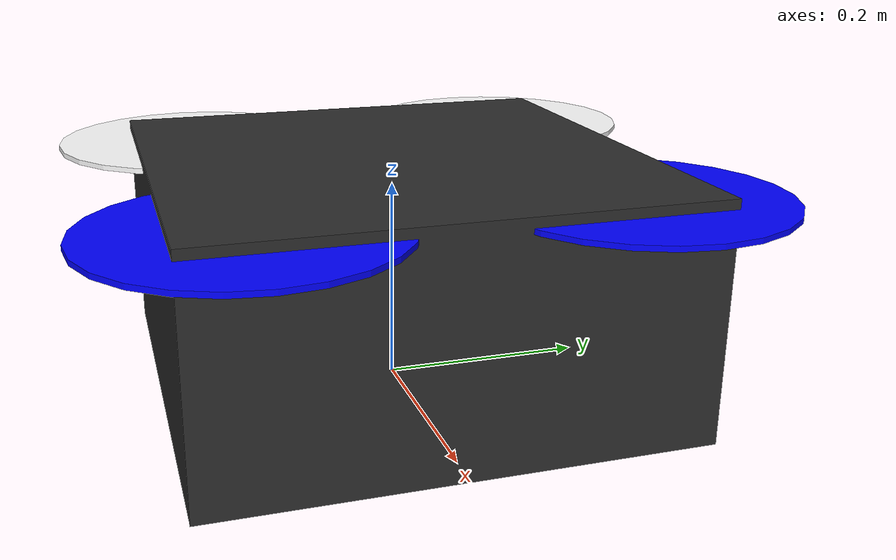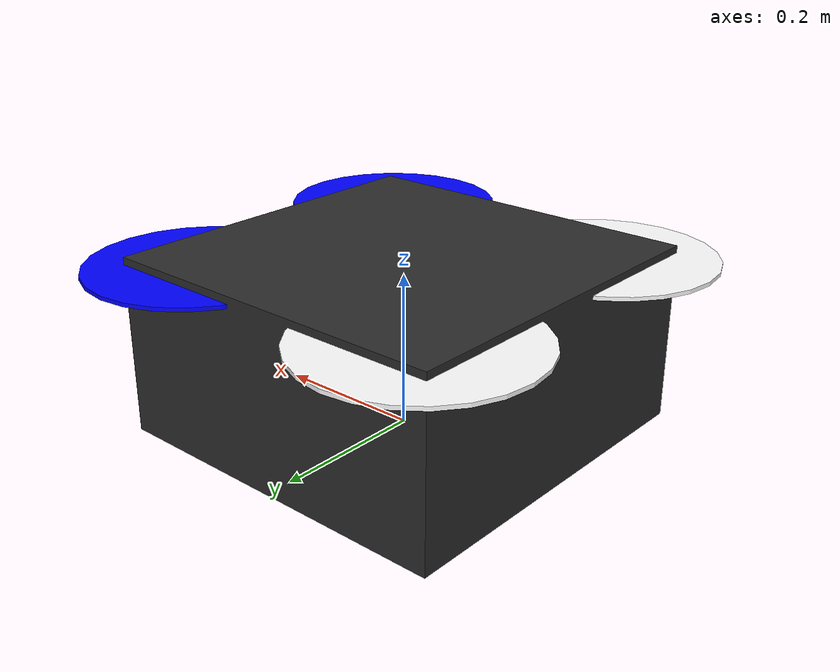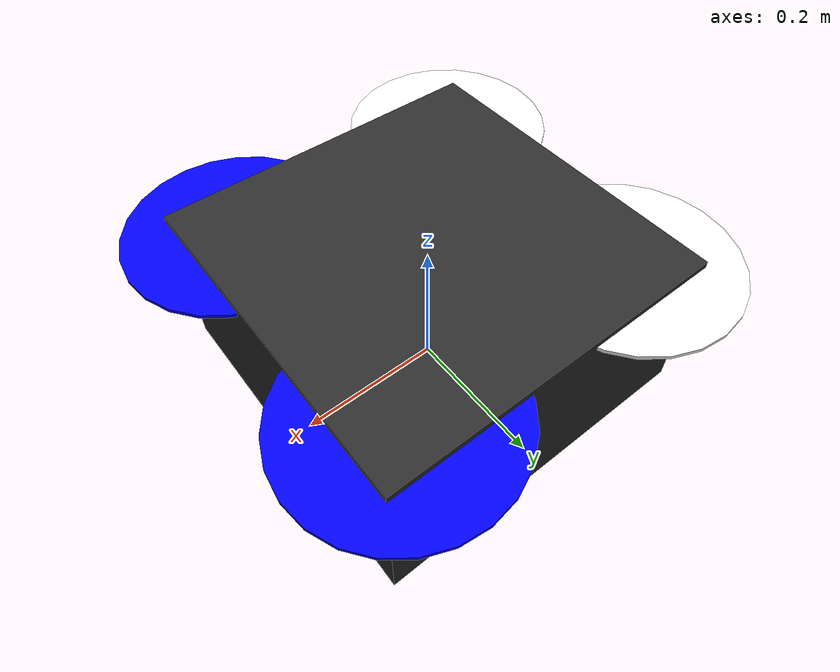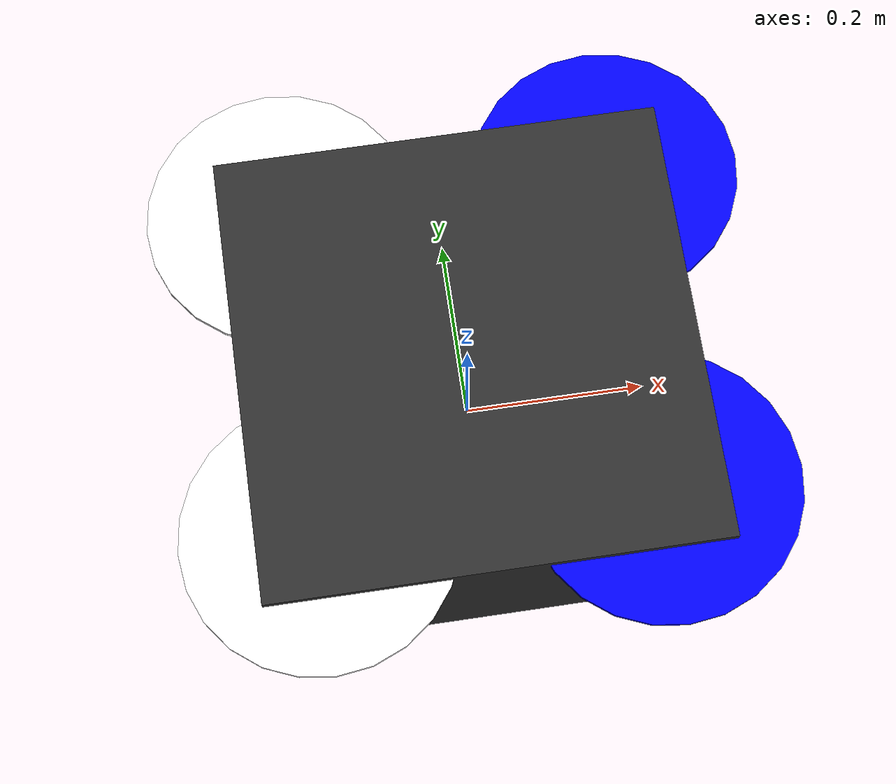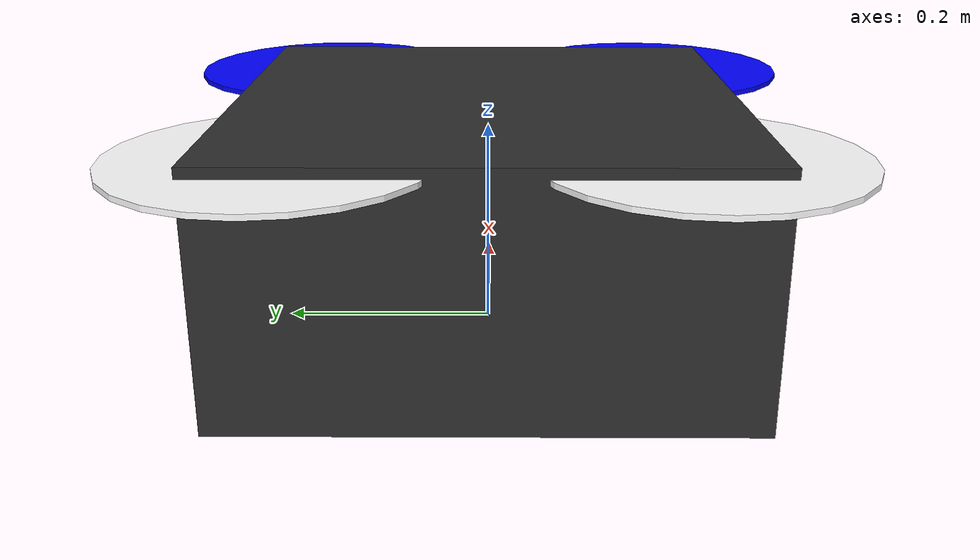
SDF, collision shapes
<?xml version='1.0' encoding='utf-8'?>
<sdf version="1.5">
  <model name="s500_custom_with_ardupilot">
    <pose>0 0 0.217923 0 0 0</pose>
    <link name="base_link">
      <pose>0 0 -0.023 0 0 0</pose>
      <velocity_decay>
        <linear>0.0</linear>
        <angular>0.0</angular>
      </velocity_decay>
      <inertial>
        <pose>-0.0039262 -0.0100078 -0.1004777 0 0 0</pose>
        <mass>2.18875</mass>
        <inertia>
          <ixx>0.01135409887</ixx>
          <ixy>-5.566618125e-05</ixy>
          <ixz>9.88726375e-05</ixz>
          <iyy>0.005295652256</iyy>
          <iyz>-0.000675407025</iyz>
          <izz>0.009625020263</izz>
        </inertia>
      </inertial>
      <collision name="base_link_collision">
        <pose>0 0 -0.08 0 0 0</pose>
        <geometry>
          <box>
            <size>0.47 0.47 0.23</size>
          </box>
        </geometry>
        <surface>
          <contact>
            <ode>
              <max_vel>100.0</max_vel>
              <min_depth>0.001</min_depth>
            </ode>
          </contact>
          <friction>
            <ode>
              <mu>100000.0</mu>
              <mu2>100000.0</mu2>
            </ode>
          </friction>
        </surface>
      </collision>
      <visual name="base_link_visual">
        <geometry>
          <mesh>
            <uri>model://iris_with_standoffs/meshes/iris.dae</uri>
          </mesh>
        </geometry>
        <material>

          <ambient>.175 .175 .175  1.0</ambient>
          <diffuse>.175 .175 .175  1.0</diffuse>
          <specular>.175 .175 .175 1.000000</specular>
        </material>
      </visual>

      <visual name="front_left_leg_visual">
        <pose>0.123 0.22 -0.11 0 0 0</pose>
        <geometry>
          <cylinder>
            <radius>0.005</radius>
            <length>0.17</length>
          </cylinder>
        </geometry>
        <material>

          <ambient>0.1 0.1 0.1</ambient>
          <diffuse>0.1 0.1 0.1</diffuse>
          <specular>0.01 0.01 0.01 1.0</specular>
        </material>
      </visual>
      <visual name="front_right_leg_visual">
        <pose>0.123 -0.22 -0.11 0 0 0</pose>
        <geometry>
          <cylinder>
            <radius>0.005</radius>
            <length>0.17</length>
          </cylinder>
        </geometry>
        <material>

          <ambient>0.1 0.1 0.1</ambient>
          <diffuse>0.1 0.1 0.1</diffuse>
          <specular>0.01 0.01 0.01 1.0</specular>
        </material>
      </visual>
      <visual name="rear_left_leg_visual">
        <pose>-0.140 0.21 -0.11 0 0 0</pose>
        <geometry>
          <cylinder>
            <radius>0.005</radius>
            <length>0.17</length>
          </cylinder>
        </geometry>
        <material>

          <ambient>0.1 0.1 0.1</ambient>
          <diffuse>0.1 0.1 0.1</diffuse>
          <specular>0.01 0.01 0.01 1.0</specular>
        </material>
      </visual>
      <visual name="rear_right_leg_visual">
        <pose>-0.140 -0.21 -0.11 0 0 0</pose>
        <geometry>
          <cylinder>
            <radius>0.005</radius>
            <length>0.17</length>
          </cylinder>
        </geometry>
        <material>

          <ambient>0.1 0.1 0.1</ambient>
          <diffuse>0.1 0.1 0.1</diffuse>
          <specular>0.01 0.01 0.01 1.0</specular>
        </material>
      </visual>
    </link>
    <link name="iris/ground_truth/odometry_sensorgt_link">
      <pose>0 0 -0.023 0 -0 0</pose>
      <inertial>
        <pose>0 0 0 0 -0 0</pose>
        <mass>0.159375</mass>
        <inertia>
          <ixx>0.00010625</ixx>
          <ixy>0</ixy>
          <ixz>0</ixz>
          <iyy>0.0002125</iyy>
          <iyz>0</iyz>
          <izz>0.0002125</izz>
        </inertia>
      </inertial>
    </link>
    <joint name="iris/ground_truth/odometry_sensorgt_joint" type="fixed">
      <child>iris/ground_truth/odometry_sensorgt_link</child>
      <parent>base_link</parent>
      <axis>
        <xyz>0 0 1</xyz>
        <limit>
          <lower>0</lower>
          <upper>0</upper>
          <effort>0</effort>
          <velocity>0</velocity>
        </limit>
        <dynamics>
          <damping>1.0</damping>
        </dynamics>
        <use_parent_model_frame>1</use_parent_model_frame>
      </axis>
      <physics>
        <ode>
          <implicit_spring_damper>1</implicit_spring_damper>
        </ode>
      </physics>
    </joint>
    <link name="imu_link">
      <pose>0 0 -0.023 0 0 0</pose>
      <inertial>
        <pose>0 0 0 0 0 0</pose>
        <mass>0.159375</mass>
        <inertia>
          <ixx>1.0625e-05</ixx>
          <ixy>0</ixy>
          <ixz>0</ixz>
          <iyy>2.125e-05</iyy>
          <iyz>0</iyz>
          <izz>2.125e-05</izz>
        </inertia>
      </inertial>
      <sensor name="imu_sensor" type="imu">
        <pose>0 0 0 3.141593 0 0</pose>
        <always_on>1</always_on>
        <update_rate>1000.0</update_rate>
      </sensor>
    </link>
    <joint name="iris/imu_joint" type="fixed">
      <child>imu_link</child>
      <parent>base_link</parent>
      <axis>
        <xyz>0 0 1</xyz>
        <limit>
          <lower>0</lower>
          <upper>0</upper>
          <effort>0</effort>
          <velocity>0</velocity>
        </limit>
        <dynamics>
          <damping>1.0</damping>
        </dynamics>
        <use_parent_model_frame>1</use_parent_model_frame>
      </axis>
      <physics>
        <ode>
          <implicit_spring_damper>1</implicit_spring_damper>
        </ode>
      </physics>
    </joint>

    <link name="rotor_0">
      <pose>0.1718022 -0.1718022 0 0 -0 0</pose>
      <inertial>
        <pose>0 0 0 0 -0 0</pose>
        <mass>0.010625</mass>
        <inertia>
          <ixx>4.14375e-06</ixx>
          <ixy>0</ixy>
          <ixz>0</ixz>
          <iyy>7.08492e-05</iyy>
          <iyz>0</iyz>
          <izz>7.12317e-05</izz>
        </inertia>
      </inertial>
      <collision name="rotor_0_collision">
        <pose>0 0 0 0 -0 0</pose>
        <geometry>
          <cylinder>
            <length>0.005</length>
            <radius>0.1397</radius>
          </cylinder>
        </geometry>
        <surface>
          <contact>
            <ode />
          </contact>
          <friction>
            <ode />
          </friction>
        </surface>
      </collision>
      <visual name="rotor_0_visual">
        <pose>0 0 0 0 -0 0</pose>
        <geometry>
          <mesh>
            <scale>1.078 1.078 1.078</scale>
            <uri>model://iris_with_standoffs/meshes/iris_prop_ccw.dae</uri>
          </mesh>
        </geometry>
        <material>

          <ambient>0 0 1</ambient>
          <diffuse>0 0 1</diffuse>
          <specular>0.1 0.1 0.1 1</specular>
        </material>
      </visual>
      <gravity>1</gravity>
      <velocity_decay />
      <self_collide>0</self_collide>
    </link>
    <joint name="rotor_0_joint" type="revolute">
      <child>rotor_0</child>
      <parent>base_link</parent>
      <axis>
        <xyz>0 0 1</xyz>
        <limit>
          <lower>-1e+16</lower>
          <upper>1e+16</upper>
        </limit>
        <dynamics>
          <damping>0.004</damping>
        </dynamics>
        <use_parent_model_frame>1</use_parent_model_frame>
      </axis>
      <physics>
        <ode>
          <implicit_spring_damper>1</implicit_spring_damper>
        </ode>
      </physics>
    </joint>
    <link name="rotor_1">
      <pose>-0.1718022 0.1718022 0 0 -0 0</pose>
      <inertial>
        <pose>0 0 0 0 -0 0</pose>
        <mass>0.010625</mass>
        <inertia>
          <ixx>4.14375e-06</ixx>
          <ixy>0</ixy>
          <ixz>0</ixz>
          <iyy>7.08492e-05</iyy>
          <iyz>0</iyz>
          <izz>7.12317e-05</izz>
        </inertia>
      </inertial>
      <collision name="rotor_1_collision">
        <pose>0 0 0 0 -0 0</pose>
        <geometry>
          <cylinder>
            <length>0.005</length>
            <radius>0.1397</radius>
          </cylinder>
        </geometry>
        <surface>
          <contact>
            <ode />
          </contact>
          <friction>
            <ode />
          </friction>
        </surface>
      </collision>
      <visual name="rotor_1_visual">
        <pose>0 0 0 0 -0 0</pose>
        <geometry>
          <mesh>
            <scale>1.078 1.078 1.078</scale>
            <uri>model://iris_with_standoffs/meshes/iris_prop_ccw.dae</uri>
          </mesh>
        </geometry>
        <material>

          <ambient>1 1 1 1</ambient>
          <diffuse>1 1 1 1</diffuse>
          <specular>.1 .1 .1 1</specular>
        </material>
      </visual>
      <gravity>1</gravity>
      <velocity_decay />
      <self_collide>0</self_collide>
    </link>
    <joint name="rotor_1_joint" type="revolute">
      <child>rotor_1</child>
      <parent>base_link</parent>
      <axis>
        <xyz>0 0 1</xyz>
        <limit>
          <lower>-1e+16</lower>
          <upper>1e+16</upper>
        </limit>
        <dynamics>
          <damping>0.004</damping>
        </dynamics>
        <use_parent_model_frame>1</use_parent_model_frame>
      </axis>
      <physics>
        <ode>
          <implicit_spring_damper>1</implicit_spring_damper>
        </ode>
      </physics>
    </joint>
    <link name="rotor_2">
      <pose>0.1718022 0.1718022 0 0 -0 0</pose>
      <inertial>
        <pose>0 0 0 0 -0 0</pose>
        <mass>0.010625</mass>
        <inertia>
          <ixx>4.14375e-06</ixx>
          <ixy>0</ixy>
          <ixz>0</ixz>
          <iyy>7.08492e-05</iyy>
          <iyz>0</iyz>
          <izz>7.12317e-05</izz>
        </inertia>
      </inertial>
      <collision name="rotor_2_collision">
        <pose>0 0 0 0 -0 0</pose>
        <geometry>
          <cylinder>
            <length>0.005</length>
            <radius>0.1397</radius>
          </cylinder>
        </geometry>
        <surface>
          <contact>
            <ode />
          </contact>
          <friction>
            <ode />
          </friction>
        </surface>
      </collision>
      <visual name="rotor_2_visual">
        <pose>0 0 0 0 -0 0</pose>
        <geometry>
          <mesh>
            <scale>1.078 1.078 1.078</scale>
            <uri>model://iris_with_standoffs/meshes/iris_prop_cw.dae</uri>
          </mesh>
        </geometry>
        <material>

          <ambient>0 0 1</ambient>
          <diffuse>0 0 1</diffuse>
          <specular>0.1 0.1 0.1 1</specular>
        </material>
      </visual>
      <gravity>1</gravity>
      <velocity_decay />
      <self_collide>0</self_collide>
    </link>
    <joint name="rotor_2_joint" type="revolute">
      <child>rotor_2</child>
      <parent>base_link</parent>
      <axis>
        <xyz>0 0 1</xyz>
        <limit>
          <lower>-1e+16</lower>
          <upper>1e+16</upper>
        </limit>
        <dynamics>
          <damping>0.004</damping>
        </dynamics>
        <use_parent_model_frame>1</use_parent_model_frame>
      </axis>
      <physics>
        <ode>
          <implicit_spring_damper>1</implicit_spring_damper>
        </ode>
      </physics>
    </joint>
    <link name="rotor_3">
      <pose>-0.1718022 -0.1718022 0 0 -0 0</pose>
      <inertial>
        <pose>0 0 0 0 -0 0</pose>
        <mass>0.010625</mass>
        <inertia>
          <ixx>4.14375e-06</ixx>
          <ixy>0</ixy>
          <ixz>0</ixz>
          <iyy>7.08492e-05</iyy>
          <iyz>0</iyz>
          <izz>7.12317e-05</izz>
        </inertia>
      </inertial>
      <collision name="rotor_3_collision">
        <pose>0 0 0 0 -0 0</pose>
        <geometry>
          <cylinder>
            <length>0.005</length>
            <radius>0.1397</radius>
          </cylinder>
        </geometry>
        <surface>
          <contact>
            <ode />
          </contact>
          <friction>
            <ode />
          </friction>
        </surface>
      </collision>
      <visual name="rotor_3_visual">
        <pose>0 0 0 0 -0 0</pose>
        <geometry>
          <mesh>
            <scale>1.078 1.078 1.078</scale>
            <uri>model://iris_with_standoffs/meshes/iris_prop_cw.dae</uri>
          </mesh>
        </geometry>
        <material>

          <ambient>1 1 1 1</ambient>
          <diffuse>1 1 1 1</diffuse>
          <specular>.1 .1 .1 1</specular>
        </material>
      </visual>
      <gravity>1</gravity>
      <velocity_decay />
      <self_collide>0</self_collide>
    </link>
    <joint name="rotor_3_joint" type="revolute">
      <child>rotor_3</child>
      <parent>base_link</parent>
      <axis>
        <xyz>0 0 1</xyz>
        <limit>
          <lower>-1e+16</lower>
          <upper>1e+16</upper>
        </limit>
        <dynamics>
          <damping>0.004</damping>
        </dynamics>
        <use_parent_model_frame>1</use_parent_model_frame>
      </axis>
      <physics>
        <ode>
          <implicit_spring_damper>1</implicit_spring_damper>
        </ode>
      </physics>
    </joint>
    <static>0</static>

    <plugin filename="libignition-gazebo-joint-state-publisher-system.so" name="ignition::gazebo::systems::JointStatePublisher">
    </plugin>
    <plugin filename="libignition-gazebo-lift-drag-system.so" name="ignition::gazebo::systems::LiftDrag">
      <a0>0.3</a0>
      <alpha_stall>1.4</alpha_stall>
      <cla>5.153257</cla>
      <cda>0.10</cda>
      <cma>0.00</cma>
      <cla_stall>-0.025</cla_stall>
      <cda_stall>0.0</cda_stall>
      <cma_stall>0.0</cma_stall>
      <area>0.002</area>
      <air_density>1.2041</air_density>
      <cp>0.084 0 0</cp>
      <forward>0 1 0</forward>
      <upward>0 0 1</upward>
      <link_name>rotor_0</link_name>
    </plugin>
    <plugin filename="libignition-gazebo-lift-drag-system.so" name="ignition::gazebo::systems::LiftDrag">
      <a0>0.3</a0>
      <alpha_stall>1.4</alpha_stall>
      <cla>5.153257</cla>
      <cda>0.10</cda>
      <cma>0.00</cma>
      <cla_stall>-0.025</cla_stall>
      <cda_stall>0.0</cda_stall>
      <cma_stall>0.0</cma_stall>
      <area>0.002</area>
      <air_density>1.2041</air_density>
      <cp>-0.084 0 0</cp>
      <forward>0 -1 0</forward>
      <upward>0 0 1</upward>
      <link_name>rotor_0</link_name>
    </plugin>

    <plugin filename="libignition-gazebo-lift-drag-system.so" name="ignition::gazebo::systems::LiftDrag">
      <a0>0.3</a0>
      <alpha_stall>1.4</alpha_stall>
      <cla>5.153257</cla>
      <cda>0.10</cda>
      <cma>0.00</cma>
      <cla_stall>-0.025</cla_stall>
      <cda_stall>0.0</cda_stall>
      <cma_stall>0.0</cma_stall>
      <area>0.002</area>
      <air_density>1.2041</air_density>
      <cp>0.084 0 0</cp>
      <forward>0 1 0</forward>
      <upward>0 0 1</upward>
      <link_name>rotor_1</link_name>
    </plugin>
    <plugin filename="libignition-gazebo-lift-drag-system.so" name="ignition::gazebo::systems::LiftDrag">
      <a0>0.3</a0>
      <alpha_stall>1.4</alpha_stall>
      <cla>5.153257</cla>
      <cda>0.10</cda>
      <cma>0.00</cma>
      <cla_stall>-0.025</cla_stall>
      <cda_stall>0.0</cda_stall>
      <cma_stall>0.0</cma_stall>
      <area>0.002</area>
      <air_density>1.2041</air_density>
      <cp>-0.084 0 0</cp>
      <forward>0 -1 0</forward>
      <upward>0 0 1</upward>
      <link_name>rotor_1</link_name>
    </plugin>

    <plugin filename="libignition-gazebo-lift-drag-system.so" name="ignition::gazebo::systems::LiftDrag">
      <a0>0.3</a0>
      <alpha_stall>1.4</alpha_stall>
      <cla>5.153257</cla>
      <cda>0.10</cda>
      <cma>0.00</cma>
      <cla_stall>-0.025</cla_stall>
      <cda_stall>0.0</cda_stall>
      <cma_stall>0.0</cma_stall>
      <area>0.002</area>
      <air_density>1.2041</air_density>
      <cp>0.084 0 0</cp>
      <forward>0 -1 0</forward>
      <upward>0 0 1</upward>
      <link_name>rotor_2</link_name>
    </plugin>
    <plugin filename="libignition-gazebo-lift-drag-system.so" name="ignition::gazebo::systems::LiftDrag">
      <a0>0.3</a0>
      <alpha_stall>1.4</alpha_stall>
      <cla>5.153257</cla>
      <cda>0.10</cda>
      <cma>0.00</cma>
      <cla_stall>-0.025</cla_stall>
      <cda_stall>0.0</cda_stall>
      <cma_stall>0.0</cma_stall>
      <area>0.002</area>
      <air_density>1.2041</air_density>
      <cp>-0.084 0 0</cp>
      <forward>0 1 0</forward>
      <upward>0 0 1</upward>
      <link_name>rotor_2</link_name>
    </plugin>

    <plugin filename="libignition-gazebo-lift-drag-system.so" name="ignition::gazebo::systems::LiftDrag">
      <a0>0.3</a0>
      <alpha_stall>1.4</alpha_stall>
      <cla>5.153257</cla>
      <cda>0.10</cda>
      <cma>0.00</cma>
      <cla_stall>-0.025</cla_stall>
      <cda_stall>0.0</cda_stall>
      <cma_stall>0.0</cma_stall>
      <area>0.002</area>
      <air_density>1.2041</air_density>
      <cp>0.084 0 0</cp>
      <forward>0 -1 0</forward>
      <upward>0 0 1</upward>
      <link_name>rotor_3</link_name>
    </plugin>
    <plugin filename="libignition-gazebo-lift-drag-system.so" name="ignition::gazebo::systems::LiftDrag">
      <a0>0.3</a0>
      <alpha_stall>1.4</alpha_stall>
      <cla>5.153257</cla>
      <cda>0.10</cda>
      <cma>0.00</cma>
      <cla_stall>-0.025</cla_stall>
      <cda_stall>0.0</cda_stall>
      <cma_stall>0.0</cma_stall>
      <area>0.002</area>
      <air_density>1.2041</air_density>
      <cp>-0.084 0 0</cp>
      <forward>0 1 0</forward>
      <upward>0 0 1</upward>
      <link_name>rotor_3</link_name>
    </plugin>

    <plugin filename="libignition-gazebo-apply-joint-force-system.so" name="ignition::gazebo::systems::ApplyJointForce">
      <joint_name>rotor_0_joint</joint_name>
    </plugin>
    <plugin filename="libignition-gazebo-apply-joint-force-system.so" name="ignition::gazebo::systems::ApplyJointForce">
      <joint_name>rotor_1_joint</joint_name>
    </plugin>
    <plugin filename="libignition-gazebo-apply-joint-force-system.so" name="ignition::gazebo::systems::ApplyJointForce">
      <joint_name>rotor_2_joint</joint_name>
    </plugin>
    <plugin filename="libignition-gazebo-apply-joint-force-system.so" name="ignition::gazebo::systems::ApplyJointForce">
      <joint_name>rotor_3_joint</joint_name>
    </plugin>

    <plugin name="ArduPilotPlugin" filename="libArduPilotPlugin.so">

      <fdm_addr>127.0.0.1</fdm_addr>
      <fdm_port_in>9002</fdm_port_in>
      <connectionTimeoutMaxCount>5</connectionTimeoutMaxCount>
      <lock_step>1</lock_step>

      <modelXYZToAirplaneXForwardZDown>0 0 0 3.141593 0 0</modelXYZToAirplaneXForwardZDown>
      <gazeboXYZToNED>0 0 0 3.141593 0 0</gazeboXYZToNED>

      <imuName>imu_sensor</imuName>

      <control channel="0">
        <jointName>rotor_0_joint</jointName>
        <useForce>1</useForce>
        <multiplier>719.8436</multiplier>
        <offset>0</offset>
        <servo_min>1100</servo_min>
        <servo_max>1900</servo_max>
        <type>VELOCITY</type>
        <p_gain>0.20</p_gain>
        <i_gain>0</i_gain>
        <d_gain>0</d_gain>
        <i_max>0</i_max>
        <i_min>0</i_min>
        <cmd_max>2.5</cmd_max>
        <cmd_min>-2.5</cmd_min>
        <controlVelocitySlowdownSim>1</controlVelocitySlowdownSim>
      </control>

      <control channel="1">
        <jointName>rotor_1_joint</jointName>
        <useForce>1</useForce>
        <multiplier>719.8436</multiplier>
        <offset>0</offset>
        <servo_min>1100</servo_min>
        <servo_max>1900</servo_max>
        <type>VELOCITY</type>
        <p_gain>0.20</p_gain>
        <i_gain>0</i_gain>
        <d_gain>0</d_gain>
        <i_max>0</i_max>
        <i_min>0</i_min>
        <cmd_max>2.5</cmd_max>
        <cmd_min>-2.5</cmd_min>
        <controlVelocitySlowdownSim>1</controlVelocitySlowdownSim>
      </control>

      <control channel="2">
        <jointName>rotor_2_joint</jointName>
        <useForce>1</useForce>
        <multiplier>-719.8436</multiplier>
        <offset>0</offset>
        <servo_min>1100</servo_min>
        <servo_max>1900</servo_max>
        <type>VELOCITY</type>
        <p_gain>0.20</p_gain>
        <i_gain>0</i_gain>
        <d_gain>0</d_gain>
        <i_max>0</i_max>
        <i_min>0</i_min>
        <cmd_max>2.5</cmd_max>
        <cmd_min>-2.5</cmd_min>
        <controlVelocitySlowdownSim>1</controlVelocitySlowdownSim>
      </control>

      <control channel="3">
        <jointName>rotor_3_joint</jointName>
        <useForce>1</useForce>
        <multiplier>-719.8436</multiplier>
        <offset>0</offset>
        <servo_min>1100</servo_min>
        <servo_max>1900</servo_max>
        <type>VELOCITY</type>
        <p_gain>0.20</p_gain>
        <i_gain>0</i_gain>
        <d_gain>0</d_gain>
        <i_max>0</i_max>
        <i_min>0</i_min>
        <cmd_max>2.5</cmd_max>
        <cmd_min>-2.5</cmd_min>
        <controlVelocitySlowdownSim>1</controlVelocitySlowdownSim>
      </control>
    </plugin>

  </model>
</sdf>
